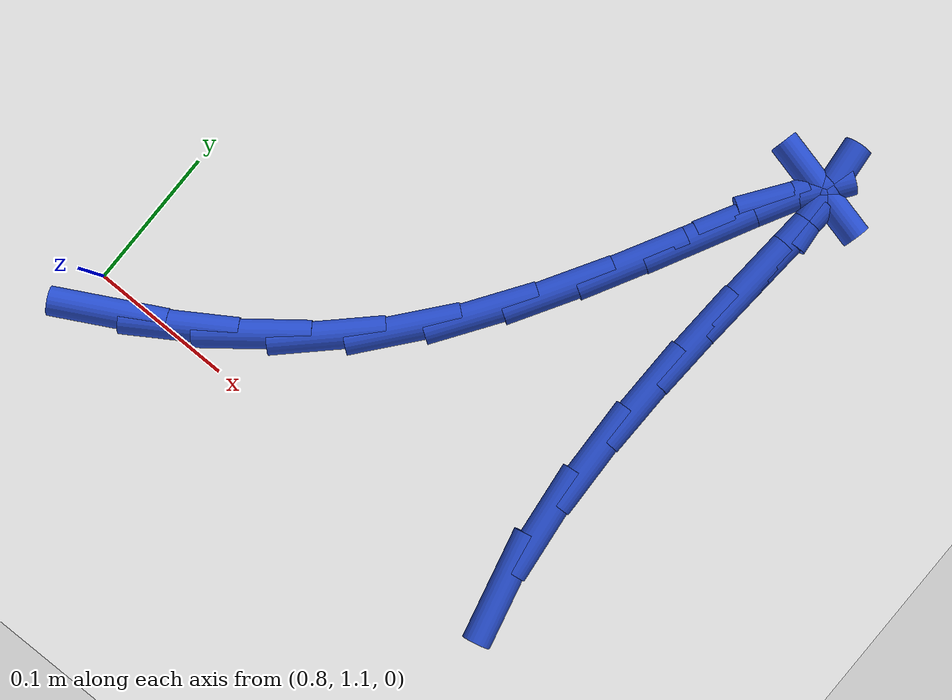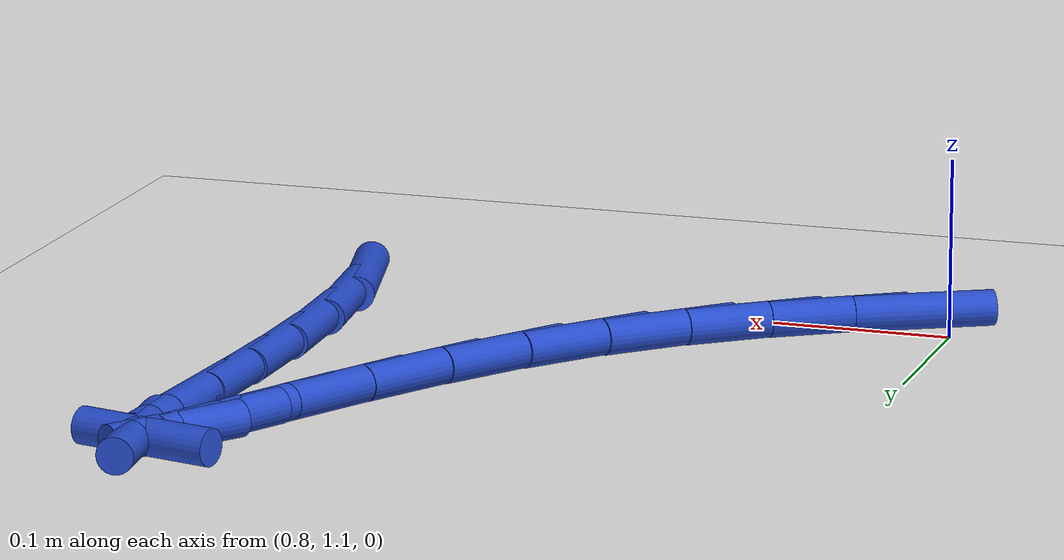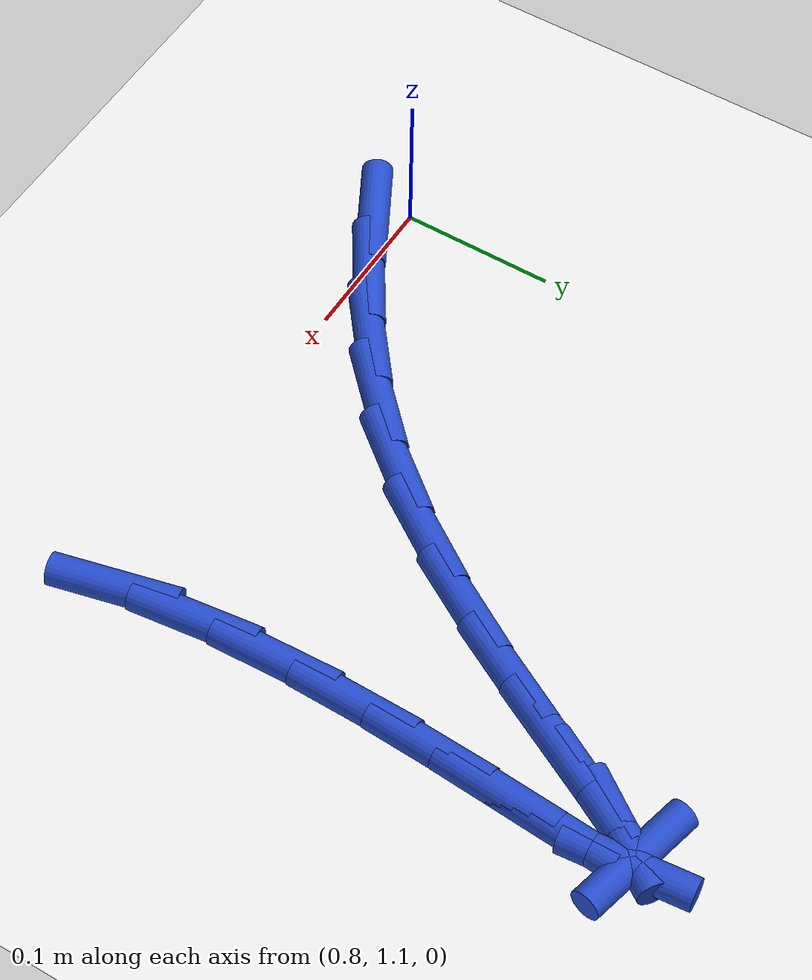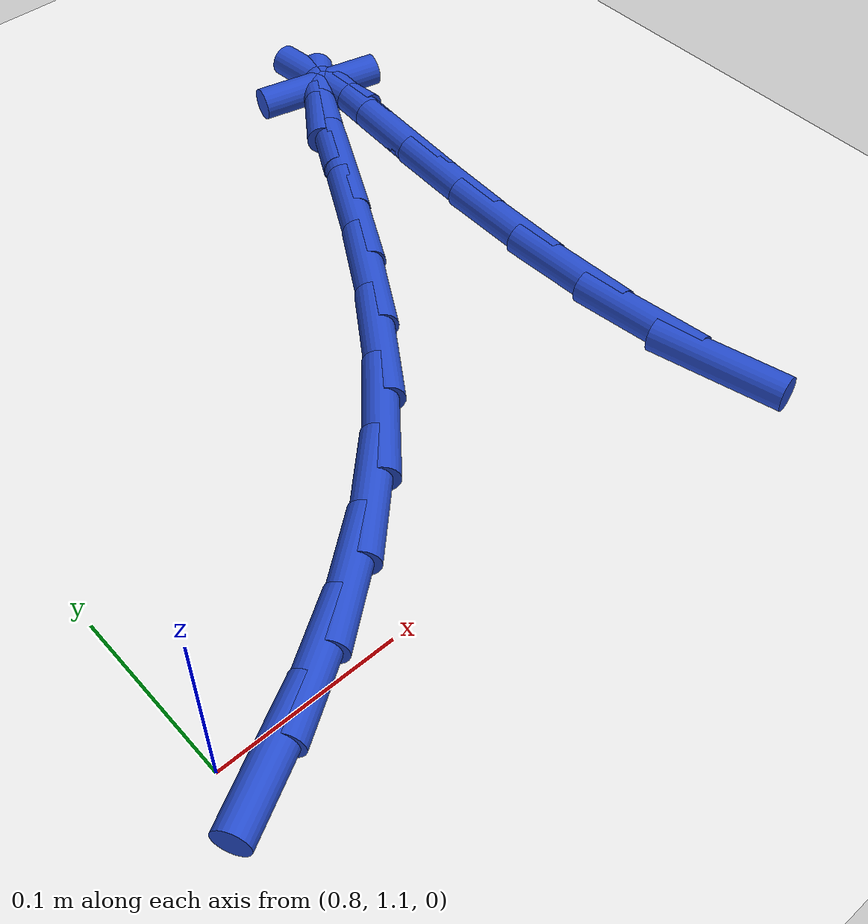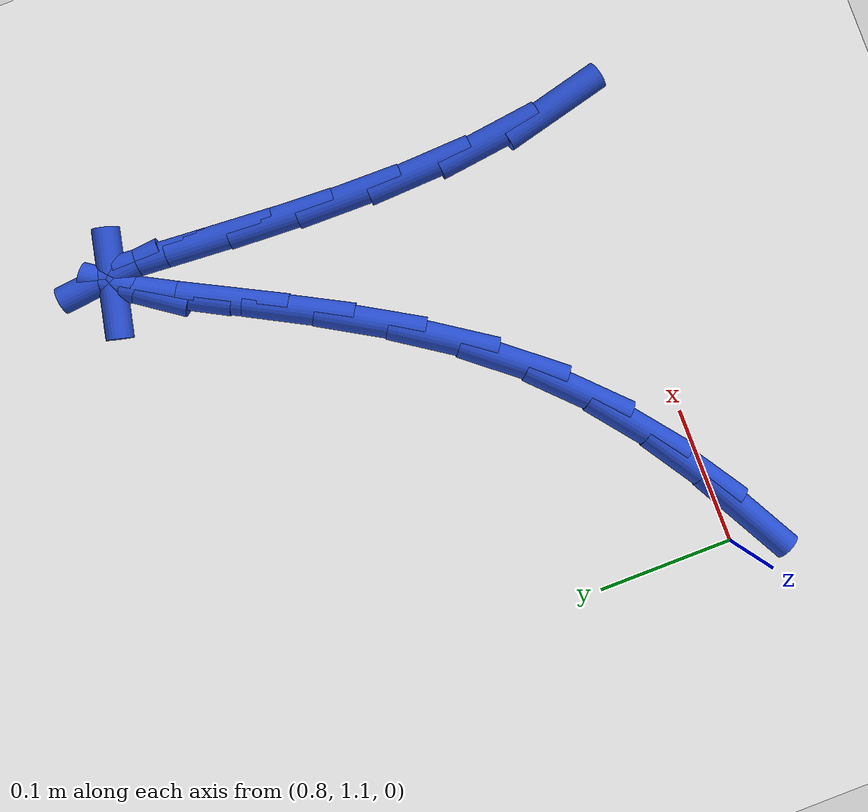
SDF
<sdf version="1.6">
 <world name="default">
  <model name="ground_plane">
   <static>1</static>
   <link name="link">
    <collision name="collision">
     <geometry><plane><normal>0 0 1</normal><size>100 100</size></plane></geometry>
     <surface><friction><ode><mu>100</mu><mu2>50</mu2></ode></friction></surface>
    </collision>
    <visual name="visual">
     <cast_shadows>0</cast_shadows>
     <geometry><plane><normal>0 0 1</normal><size>100 100</size></plane></geometry>
     <material>
      <script><uri>file://media/materials/scripts/gazebo.material</uri><name>Gazebo/WhiteGlow</name></script>
     </material>
    </visual>
   </link>
  </model>
  <model name="line">
   <link name="link_37">
    <pose>0.8189479318645285 1.0844225342667522 0.01 0 1.57 0.49716514496578956</pose>
    <collision name="collision">
     <geometry><cylinder><radius>0.01</radius><length>0.08</length></cylinder></geometry>
    </collision>
    <visual name="visual">
     <material>
      <script><name>Gazebo/Blue</name><uri>file://media/materials/scripts/gazebo.material</uri></script>
     </material>
     <geometry><cylinder><radius>0.01</radius><length>0.08</length></cylinder></geometry>
    </visual>
   </link>
   <link name="link_38">
    <pose>0.8611549371008289 1.1073252060580863 0.01 0 1.57 0.5746424091434937</pose>
    <collision name="collision">
     <geometry><cylinder><radius>0.01</radius><length>0.08</length></cylinder></geometry>
    </collision>
    <visual name="visual">
     <material>
      <script><name>Gazebo/Blue</name><uri>file://media/materials/scripts/gazebo.material</uri></script>
     </material>
     <geometry><cylinder><radius>0.01</radius><length>0.08</length></cylinder></geometry>
    </visual>
   </link>
   <link name="link_39">
    <pose>0.902050557287126 1.1338066678824499 0.01 0 1.57 0.6670929081125562</pose>
    <collision name="collision">
     <geometry><cylinder><radius>0.01</radius><length>0.08</length></cylinder></geometry>
    </collision>
    <visual name="visual">
     <material>
      <script><name>Gazebo/Blue</name><uri>file://media/materials/scripts/gazebo.material</uri></script>
     </material>
     <geometry><cylinder><radius>0.01</radius><length>0.08</length></cylinder></geometry>
    </visual>
   </link>
   <link name="link_40">
    <pose>0.9410400319222816 1.1645121758634391 0.01 0 1.57 0.7727189167463834</pose>
    <collision name="collision">
     <geometry><cylinder><radius>0.01</radius><length>0.08</length></cylinder></geometry>
    </collision>
    <visual name="visual">
     <material>
      <script><name>Gazebo/Blue</name><uri>file://media/materials/scripts/gazebo.material</uri></script>
     </material>
     <geometry><cylinder><radius>0.01</radius><length>0.08</length></cylinder></geometry>
    </visual>
   </link>
   <link name="link_41">
    <pose>0.9775286005051571 1.2000869861246501 0.01 0 1.57 0.8853441486444519</pose>
    <collision name="collision">
     <geometry><cylinder><radius>0.01</radius><length>0.08</length></cylinder></geometry>
    </collision>
    <visual name="visual">
     <material>
      <script><name>Gazebo/Blue</name><uri>file://media/materials/scripts/gazebo.material</uri></script>
     </material>
     <geometry><cylinder><radius>0.01</radius><length>0.08</length></cylinder></geometry>
    </visual>
   </link>
   <link name="link_42">
    <pose>1.0109446838249232 1.2409519848049575 0.01 0 1.57 0.9755425239559367</pose>
    <collision name="collision">
     <geometry><cylinder><radius>0.01</radius><length>0.08</length></cylinder></geometry>
    </collision>
    <visual name="visual">
     <material>
      <script><name>Gazebo/Blue</name><uri>file://media/materials/scripts/gazebo.material</uri></script>
     </material>
     <geometry><cylinder><radius>0.01</radius><length>0.08</length></cylinder></geometry>
    </visual>
   </link>
   <link name="link_43">
    <pose>1.040950856286816 1.2852617026091506 0.01 0 1.57 1.0363660029310606</pose>
    <collision name="collision">
     <geometry><cylinder><radius>0.01</radius><length>0.08</length></cylinder></geometry>
    </collision>
    <visual name="visual">
     <material>
      <script><name>Gazebo/Blue</name><uri>file://media/materials/scripts/gazebo.material</uri></script>
     </material>
     <geometry><cylinder><radius>0.01</radius><length>0.08</length></cylinder></geometry>
    </visual>
   </link>
   <link name="link_44">
    <pose>1.0673455170793091 1.3298560322674264 0.01 0 1.57 1.0744800186145083</pose>
    <collision name="collision">
     <geometry><cylinder><radius>0.01</radius><length>0.08</length></cylinder></geometry>
    </collision>
    <visual name="visual">
     <material>
      <script><name>Gazebo/Blue</name><uri>file://media/materials/scripts/gazebo.material</uri></script>
     </material>
     <geometry><cylinder><radius>0.01</radius><length>0.08</length></cylinder></geometry>
    </visual>
   </link>
   <link name="link_45">
    <pose>1.0899287333122232 1.3715587228233062 0.01 0 1.57 1.0903554069538983</pose>
    <collision name="collision">
     <geometry><cylinder><radius>0.01</radius><length>0.08</length></cylinder></geometry>
    </collision>
    <visual name="visual">
     <material>
      <script><name>Gazebo/Blue</name><uri>file://media/materials/scripts/gazebo.material</uri></script>
     </material>
     <geometry><cylinder><radius>0.01</radius><length>0.08</length></cylinder></geometry>
    </visual>
   </link>
   <link name="link_46">
    <pose>1.1085005720953804 1.4071935233203112 0.01 0 1.57 1.0724540769323248</pose>
    <collision name="collision">
     <geometry><cylinder><radius>0.01</radius><length>0.08</length></cylinder></geometry>
    </collision>
    <visual name="visual">
     <material>
      <script><name>Gazebo/Blue</name><uri>file://media/materials/scripts/gazebo.material</uri></script>
     </material>
     <geometry><cylinder><radius>0.01</radius><length>0.08</length></cylinder></geometry>
    </visual>
   </link>
   <link name="link_47">
    <pose>1.1228611005386016 1.4335841828019622 0.01 0 1.57 0.9519453991845559</pose>
    <collision name="collision">
     <geometry><cylinder><radius>0.01</radius><length>0.08</length></cylinder></geometry>
    </collision>
    <visual name="visual">
     <material>
      <script><name>Gazebo/Blue</name><uri>file://media/materials/scripts/gazebo.material</uri></script>
     </material>
     <geometry><cylinder><radius>0.01</radius><length>0.08</length></cylinder></geometry>
    </visual>
   </link>
   <link name="link_48">
    <pose>1.1328103857517076 1.4475544503117803 0.01 0 1.57 -0.2323092207733221</pose>
    <collision name="collision">
     <geometry><cylinder><radius>0.01</radius><length>0.08</length></cylinder></geometry>
    </collision>
    <visual name="visual">
     <material>
      <script><name>Gazebo/Blue</name><uri>file://media/materials/scripts/gazebo.material</uri></script>
     </material>
     <geometry><cylinder><radius>0.01</radius><length>0.08</length></cylinder></geometry>
    </visual>
   </link>
   <link name="link_49">
    <pose>1.1382302597067393 1.44627221380061 0.01 0 1.57 -1.4732201761016894</pose>
    <collision name="collision">
     <geometry><cylinder><radius>0.01</radius><length>0.08</length></cylinder></geometry>
    </collision>
    <visual name="visual">
     <material>
      <script><name>Gazebo/Blue</name><uri>file://media/materials/scripts/gazebo.material</uri></script>
     </material>
     <geometry><cylinder><radius>0.01</radius><length>0.08</length></cylinder></geometry>
    </visual>
   </link>
   <link name="link_51">
    <pose>1.1386399836471184 1.4019037451842946 0.01 0 1.57 1.4989449881171628</pose>
    <collision name="collision">
     <geometry><cylinder><radius>0.01</radius><length>0.08</length></cylinder></geometry>
    </collision>
    <visual name="visual">
     <material>
      <script><name>Gazebo/Blue</name><uri>file://media/materials/scripts/gazebo.material</uri></script>
     </material>
     <geometry><cylinder><radius>0.01</radius><length>0.08</length></cylinder></geometry>
    </visual>
   </link>
   <link name="link_52">
    <pose>1.1358863232189613 1.3636453055934095 0.01 0 1.57 1.5005536306053475</pose>
    <collision name="collision">
     <geometry><cylinder><radius>0.01</radius><length>0.08</length></cylinder></geometry>
    </collision>
    <visual name="visual">
     <material>
      <script><name>Gazebo/Blue</name><uri>file://media/materials/scripts/gazebo.material</uri></script>
     </material>
     <geometry><cylinder><radius>0.01</radius><length>0.08</length></cylinder></geometry>
    </visual>
   </link>
   <link name="link_53">
    <pose>1.132667990429113 1.3179033552049266 0.01 0 1.57 1.5205984067136467</pose>
    <collision name="collision">
     <geometry><cylinder><radius>0.01</radius><length>0.08</length></cylinder></geometry>
    </collision>
    <visual name="visual">
     <material>
      <script><name>Gazebo/Blue</name><uri>file://media/materials/scripts/gazebo.material</uri></script>
     </material>
     <geometry><cylinder><radius>0.01</radius><length>0.08</length></cylinder></geometry>
    </visual>
   </link>
   <link name="link_54">
    <pose>1.1301157422054775 1.2671023635620111 0.01 0 1.57 1.5566604898010765</pose>
    <collision name="collision">
     <geometry><cylinder><radius>0.01</radius><length>0.08</length></cylinder></geometry>
    </collision>
    <visual name="visual">
     <material>
      <script><name>Gazebo/Blue</name><uri>file://media/materials/scripts/gazebo.material</uri></script>
     </material>
     <geometry><cylinder><radius>0.01</radius><length>0.08</length></cylinder></geometry>
    </visual>
   </link>
   <link name="link_55">
    <pose>1.12936033547596 1.213666800207829 0.01 0 1.57 -1.5303269674825457</pose>
    <collision name="collision">
     <geometry><cylinder><radius>0.01</radius><length>0.08</length></cylinder></geometry>
    </collision>
    <visual name="visual">
     <material>
      <script><name>Gazebo/Blue</name><uri>file://media/materials/scripts/gazebo.material</uri></script>
     </material>
     <geometry><cylinder><radius>0.01</radius><length>0.08</length></cylinder></geometry>
    </visual>
   </link>
   <link name="link_56">
    <pose>1.1315325271684649 1.1600211346855445 0.01 0 1.57 -1.4502406777522936</pose>
    <collision name="collision">
     <geometry><cylinder><radius>0.01</radius><length>0.08</length></cylinder></geometry>
    </collision>
    <visual name="visual">
     <material>
      <script><name>Gazebo/Blue</name><uri>file://media/materials/scripts/gazebo.material</uri></script>
     </material>
     <geometry><cylinder><radius>0.01</radius><length>0.08</length></cylinder></geometry>
    </visual>
   </link>
   <link name="link_57">
    <pose>1.137763074210897 1.1085898365383233 0.01 0 1.57 -1.3314262796579297</pose>
    <collision name="collision">
     <geometry><cylinder><radius>0.01</radius><length>0.08</length></cylinder></geometry>
    </collision>
    <visual name="visual">
     <material>
      <script><name>Gazebo/Blue</name><uri>file://media/materials/scripts/gazebo.material</uri></script>
     </material>
     <geometry><cylinder><radius>0.01</radius><length>0.08</length></cylinder></geometry>
    </visual>
   </link>
  </model>
 </world>
</sdf>
